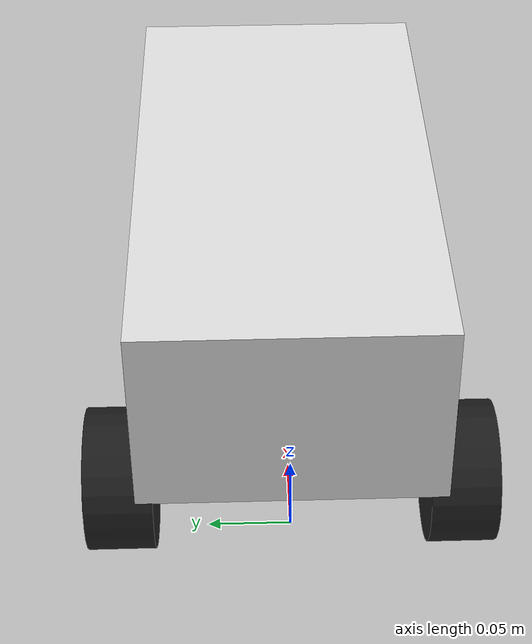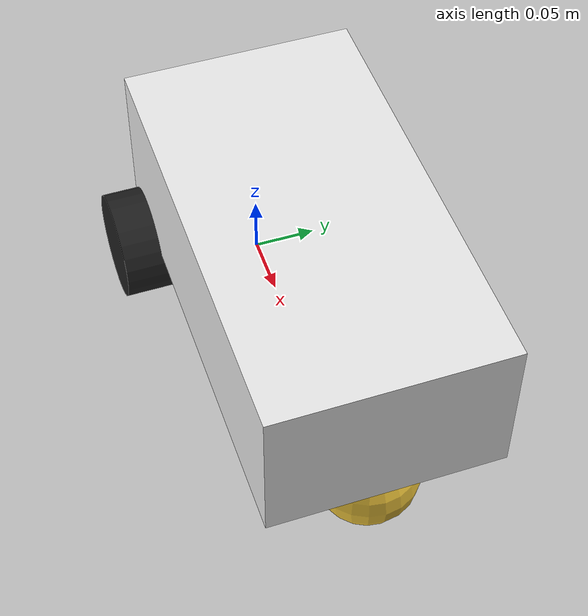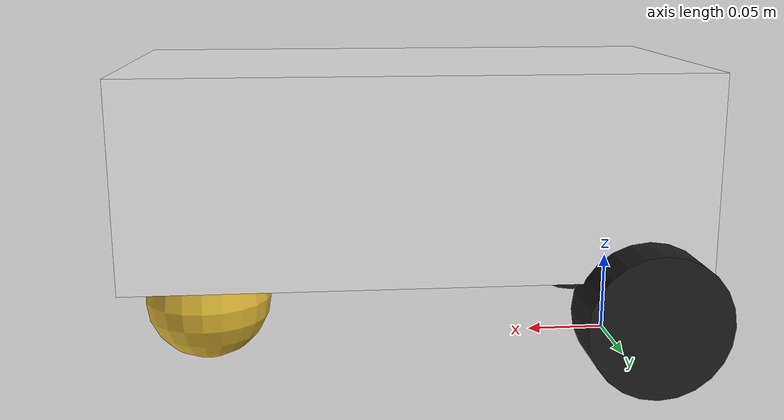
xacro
<?xml version="1.0"?>
<robot xmlns:xacro="http://www.ros.org/wiki/xacro">

    <xacro:include filename="inertial.xacro"/>
    <!-- base link -->

    <link name="base_link">
    </link>

    <!-- chassis link -->
    <joint name="chassis_joint" type="fixed">
        <parent link="base_link"/>
        <child link="chassis"/>
        <origin xyz="0.13 0.0 0.12"/>
    </joint>

    <link name="chassis">
        <visual>
            <origin xyz="0 0.0 0"/>
            <geometry>
                <box size="0.34 0.18 0.12"/>
            </geometry>
            <material name="white"/>
        </visual>
        <collision>
            <origin xyz="0.13 0.0 0.12"/>
            <geometry>
                <box size="0.34 0.18 0.12"/>
            </geometry>
        </collision>
        <xacro:inertial_box mass="0.5" x="0.3" y="0.3" z="0.15">
            <origin xyz="0.15 0.0 0.075" rpy="0.0 0.0 0.0"/>
        </xacro:inertial_box>
    </link>

    <gazebo reference = "chassis">
        <material>Gazebo/White</material>
    </gazebo>

    <!-- left wheel link -->
     <joint name="left_wheel_joint" type="continuous">
        <parent link="base_link"/>
        <child link="left_wheel"/>
        <origin xyz="0.0 0.1 0.042" rpy="-${pi/2} ${pi} 0.0"/>
        <axis xyz="0.0 0.0 1"/>
     </joint>

     <link name="left_wheel">
        <visual>
            <geometry>
                <cylinder radius="0.042" length="0.04"/>
            </geometry>
            <material name="black"/>
        </visual>
        <collision>
            <geometry>
                <cylinder radius="0.042" length="0.04"/>
            </geometry>
        </collision>
        <xacro:inertial_cylinder mass="0.1" length="0.04" radius="0.05">
            <origin xyz="0.0 0.0 0.0" rpy="0.0 0.0 0.0"/>
        </xacro:inertial_cylinder>
     </link>

     <gazebo reference = "left_wheel">
        <material>Gazebo/Black</material>
    </gazebo>

    <!-- right wheel link -->
     <joint name="right_wheel_joint" type="continuous">
        <parent link="base_link"/>
        <child link="right_wheel"/>
        <origin xyz="0.0 -0.1 0.042" rpy="${pi/2} 0 0.0"/>
        <axis xyz="0.0 0.0 -1"/>
     </joint>

     <link name="right_wheel">
        <visual>
            <geometry>
                <cylinder radius="0.042" length="0.04"/>
            </geometry>
            <material name="black"/>
        </visual>
        <collision>
            <geometry>
                <cylinder radius="0.042" length="0.04"/>
            </geometry>
        </collision>
        <xacro:inertial_cylinder mass="0.1" length="0.04" radius="0.05">
            <origin xyz="0.0 0.0 0.0" rpy="0.0 0.0 0.0"/>
        </xacro:inertial_cylinder>
     </link>

     <gazebo reference = "right_wheel">
        <material>Gazebo/Black</material>
    </gazebo>

    <!-- caster wheel link-->
     <joint name="caster_wheel_link" type="fixed">
        <parent link="chassis"/>
        <child link="caster_wheel"/>
        <origin xyz="0.13 0.0 -0.09"/>

     </joint>

     <link name="caster_wheel">
        <visual>
            <geometry>
                <sphere radius="0.04"/>
            </geometry>
            <material name="gold"/>
        </visual>
        <collision>
            <geometry>
                <sphere radius="0.04"/>
            </geometry>
        </collision>
        <xacro:inertial_sphere mass="0.1" radius="0.04">
            <origin xyz="0.0 0.0 0.0" rpy="0.0 0.0 0.0"/>
        </xacro:inertial_sphere>
     </link>

     <gazebo reference = "caster_wheel">
        <material>Gazebo/Yellow</material>
        <mu1 value = "0.001"/>
        <mu2 value = "0.001"/>
    </gazebo>

</robot>
